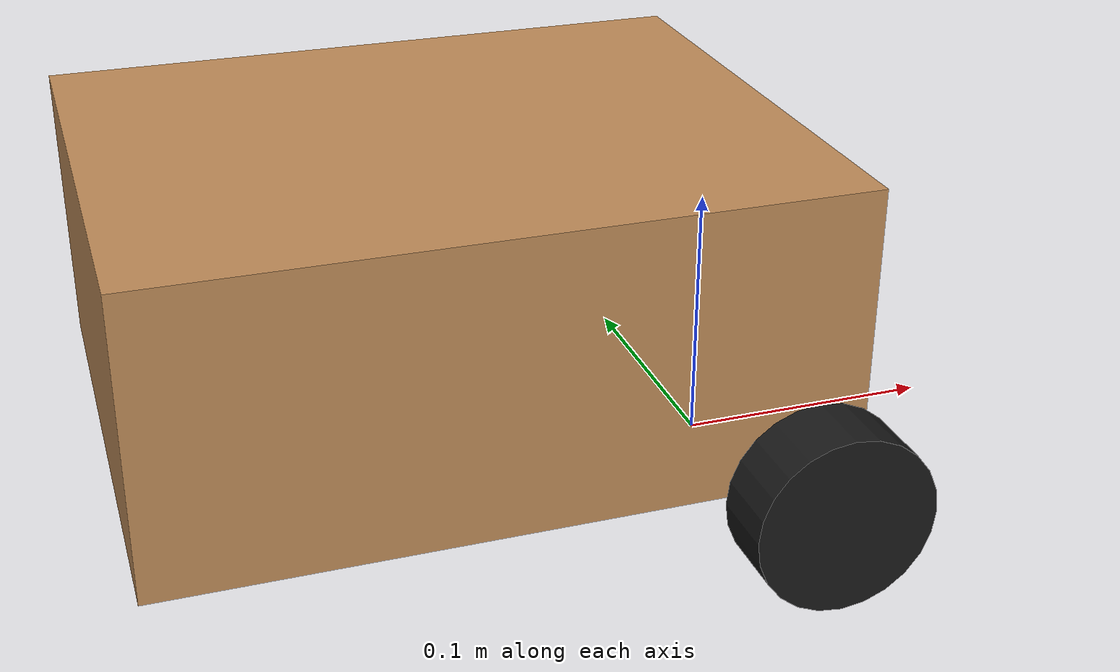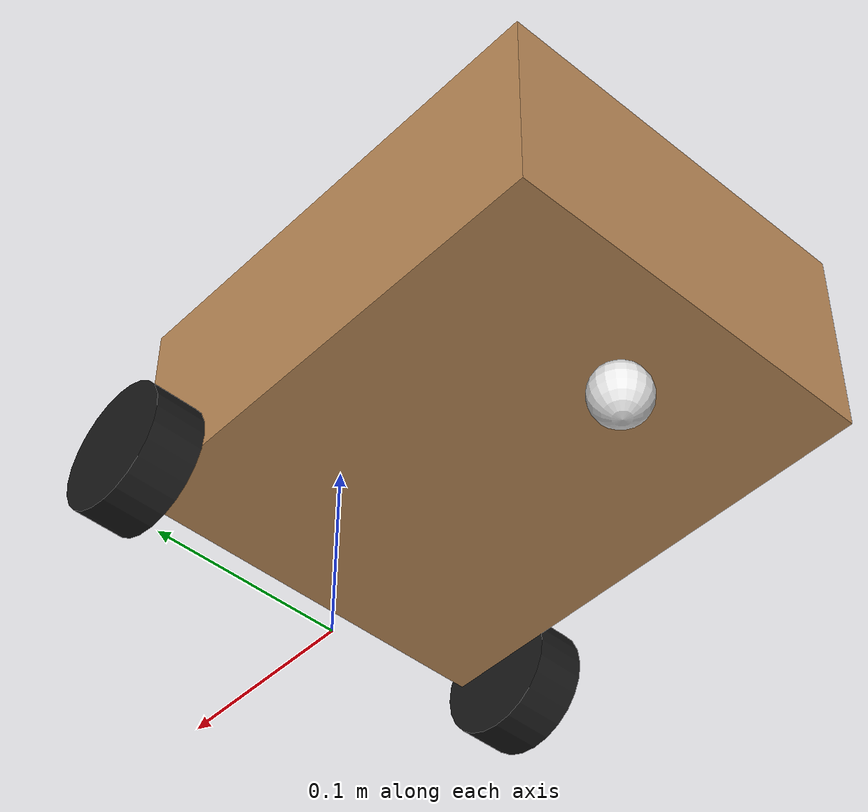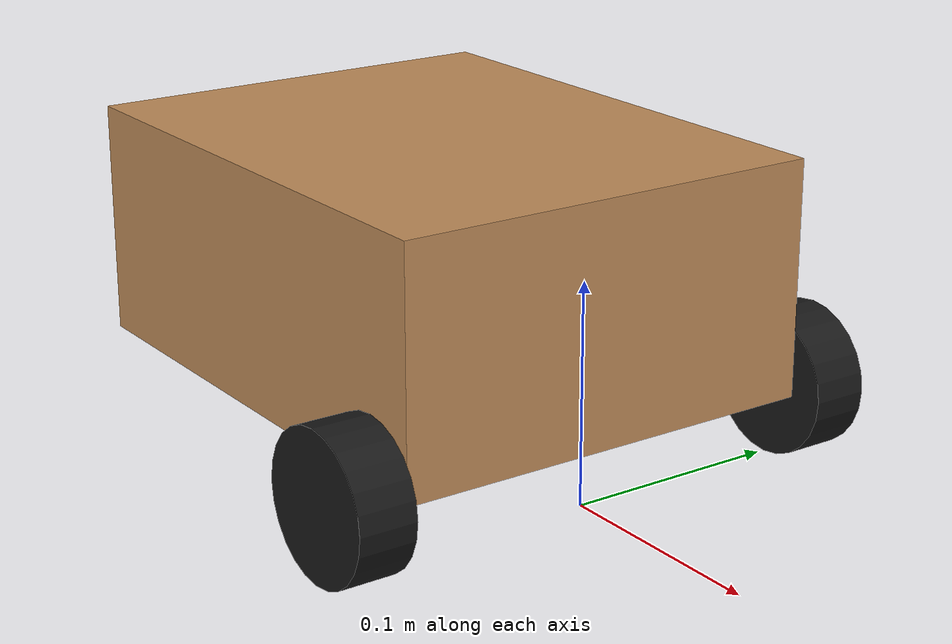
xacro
<?xml version="1.0"?>
<robot xmlns:xacro="http://www.ros.org/wiki/xacro">

    <!-- MATERIALS & COLORS FOR RVIZ -->
    <material name="wood_mdf">
        <color rgba="0.75 0.55 0.35 1.0"/>
    </material>
    <material name="black">
        <color rgba="0.1 0.1 0.1 1.0"/>
    </material>
    <material name="white">
        <color rgba="0.9 0.9 0.9 1.0"/>
    </material>

    <!-- PROPERTY DEFINITIONS (Tweak these to match physical dimensions) -->
    <xacro:property name="chassis_length" value="0.250"/> <!-- 25 cm -->
    <xacro:property name="chassis_width"  value="0.20"/> <!-- 18 cm -->
    <xacro:property name="chassis_height" value="0.1075"/> <!-- 6 cm 0.060-->
    <xacro:property name="chassis_mass"   value="0.800"/>

    <xacro:property name="wheel_radius"  value="0.033"/> <!-- 66 mm diameter -->
    <xacro:property name="wheel_thickness" value="0.026"/> <!-- 26 mm width -->
    <xacro:property name="wheel_mass"      value="0.050"/>
    <xacro:property name="wheel_offset_y"  value="0.1165"/> <!-- Track width center-to-wheel -->
    <xacro:property name="wheel_offset_x"  value="0.0"/> <!-- Axle position along length -->

    <xacro:property name="caster_radius"  value="0.015"/> <!-- 30 mm caster ball -->
    <xacro:property name="caster_mass"    value="0.030"/>
    <xacro:property name="caster_offset_x" value="-0.185"/> <!-- Front/rear caster position -->

    <!-- 1. BASE FOOTPRINT (Ground plane z=0) -->
    <link name="base_footprint"/>

    <joint name="base_footprint_joint" type="fixed">
        <parent link="base_footprint"/>
        <child link="base_link"/>
        <origin xyz="0 0 ${wheel_radius}" rpy="0 0 0"/>
    </joint>

    <!-- 2. BASE LINK (Main MDF Chassis) -->
    <link name="base_link">
        <visual>
            <origin xyz="-0.105 0 ${chassis_height/2}" rpy="0 0 0"/>
            <geometry>
                <box size="${chassis_length} ${chassis_width} ${chassis_height}"/>
            </geometry>
            <material name="wood_mdf"/>
        </visual>
        <collision>
            <origin xyz="-0.105 0 ${chassis_height/2}" rpy="0 0 0"/>
            <geometry>
                <box size="${chassis_length} ${chassis_width} ${chassis_height}"/>
            </geometry>
        </collision>
        <xacro:inertial_box mass="${chassis_mass}" x="${chassis_length}" y="${chassis_width}" z="${chassis_height}">
            <origin xyz="-0.105 0 ${chassis_height/2}" rpy="0 0 0"/>
        </xacro:inertial_box>
    </link>

    <!-- 3. LEFT WHEEL -->
    <joint name="left_wheel_joint" type="continuous">
        <parent link="base_link"/>
        <child link="left_wheel"/>
        <origin xyz="${wheel_offset_x} ${wheel_offset_y} 0" rpy="-${pi/2} 0 0"/>
        <axis xyz="0 0 1"/>
    </joint>

    <link name="left_wheel">
        <visual>
            <geometry>
                <cylinder radius="${wheel_radius}" length="${wheel_thickness}"/>
            </geometry>
            <material name="black"/>
        </visual>
        <collision>
            <geometry>
                <cylinder radius="${wheel_radius}" length="${wheel_thickness}"/>
            </geometry>
        </collision>
        <xacro:inertial_cylinder mass="${wheel_mass}" length="${wheel_thickness}" radius="${wheel_radius}">
            <origin xyz="0 0 0" rpy="0 0 0"/>
        </xacro:inertial_cylinder>
    </link>

    <!-- 4. RIGHT WHEEL -->
    <joint name="right_wheel_joint" type="continuous">
        <parent link="base_link"/>
        <child link="right_wheel"/>
        <origin xyz="${wheel_offset_x} -${wheel_offset_y} 0" rpy="${pi/2} 0 0"/>
        <axis xyz="0 0 -1"/>
    </joint>

    <link name="right_wheel">
        <visual>
            <geometry>
                <cylinder radius="${wheel_radius}" length="${wheel_thickness}"/>
            </geometry>
            <material name="black"/>
        </visual>
        <collision>
            <geometry>
                <cylinder radius="${wheel_radius}" length="${wheel_thickness}"/>
            </geometry>
        </collision>
        <xacro:inertial_cylinder mass="${wheel_mass}" length="${wheel_thickness}" radius="${wheel_radius}">
            <origin xyz="0 0 0" rpy="0 0 0"/>
        </xacro:inertial_cylinder>
    </link>

    <!-- 5. CASTER WHEEL -->
    <joint name="caster_wheel_joint" type="fixed">
        <parent link="base_link"/>
        <child link="caster_wheel"/>
        <origin xyz="${caster_offset_x} 0 -${wheel_radius - caster_radius}" rpy="0 0 0"/>
    </joint>

    <link name="caster_wheel">
        <visual>
            <geometry>
                <sphere radius="${caster_radius}"/>
            </geometry>
            <material name="white"/>
        </visual>
        <collision>
            <geometry>
                <sphere radius="${caster_radius}"/>
            </geometry>
        </collision>
        <xacro:inertial_sphere mass="${caster_mass}" radius="${caster_radius}">
            <origin xyz="0 0 0" rpy="0 0 0"/>
        </xacro:inertial_sphere>
    </link>

</robot>
